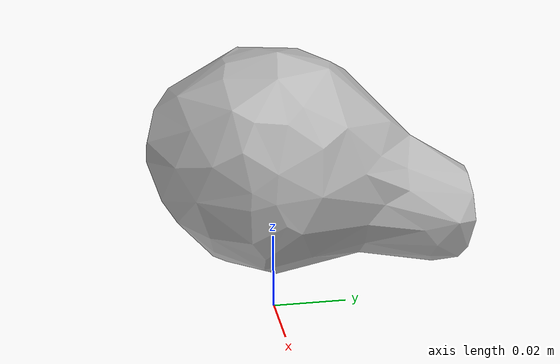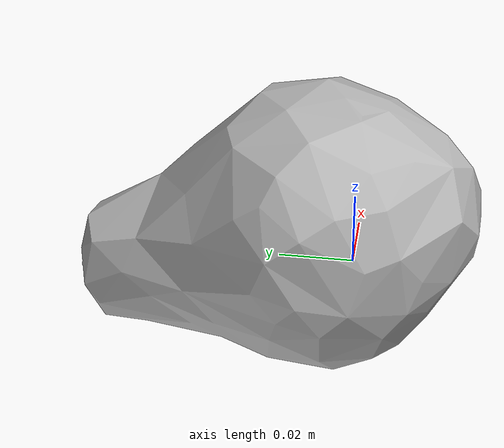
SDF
<?xml version='1.0'?>
<sdf version="1.4">
  <model name="016_pear">
    <static>false</static>
    <link name="link">
      <inertial>
        <pose>-0.032354501278973116 0.01225328264212693 0.029566376344435756 -1.0841587438782516 -0.7691692853647002 2.7134318601485177</pose>
        <mass>0.02021454564780203</mass>
        <inertia>
          <ixx>1.4077689927397321e-05</ixx>
          <ixy>4.6540802418938984e-21</ixy>
          <ixz>-3.7338286507304677e-22</ixz>
          <iyy>1.3833451017541076e-05</iyy>
          <iyz>4.93094352804036e-22</iyz>
          <izz>8.217648269409947e-06</izz>
        </inertia>
      </inertial>
      <collision name="collision">
        <geometry>
          <mesh>
            <!-- Use a downsampled mesh for collisions -->
            <uri>model:///016_pear/016_pear_250_collision.stl</uri>
	        </mesh>
        </geometry>
        <surface>
      </surface>
      </collision>
      <visual name="visual">
        <geometry>
          <mesh>
            <uri>model:///016_pear/textured.obj</uri>
	        </mesh>
        </geometry>
        <material>
          <script>
            <uri>model:///016_pear/016_pear.material</uri>
            <name>016_pear</name>
          </script>
        </material>
      </visual>
    </link>
  </model>
</sdf>
